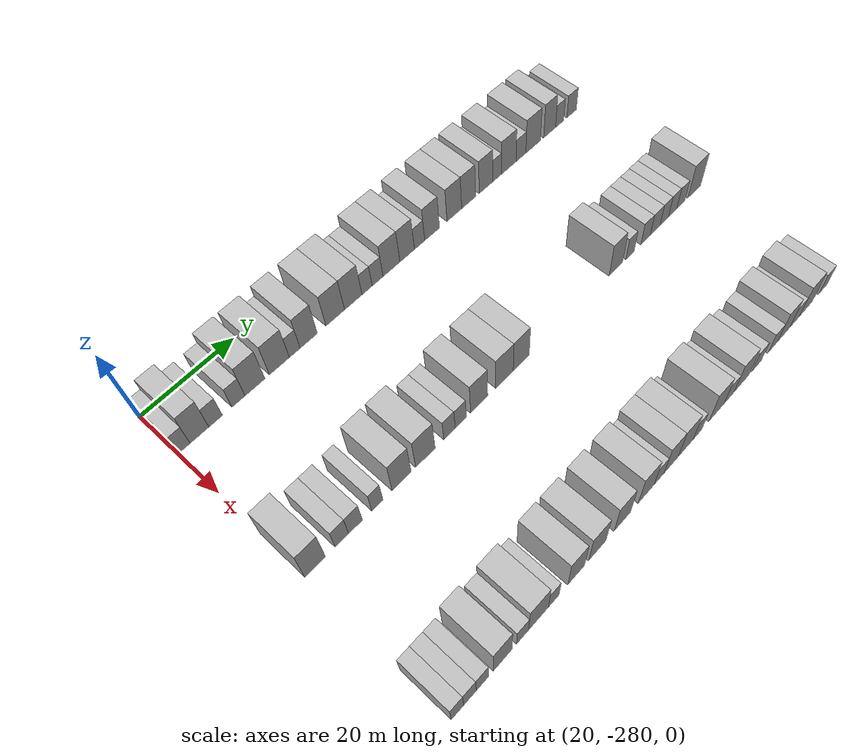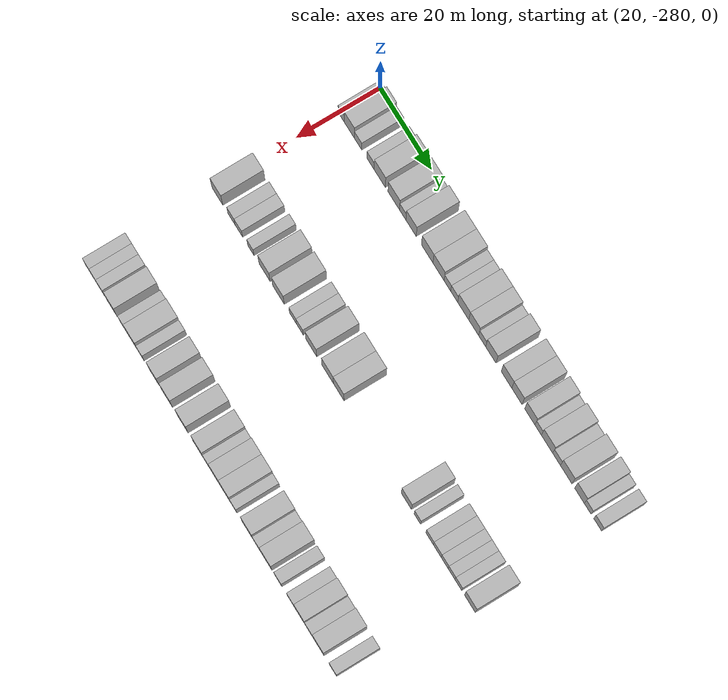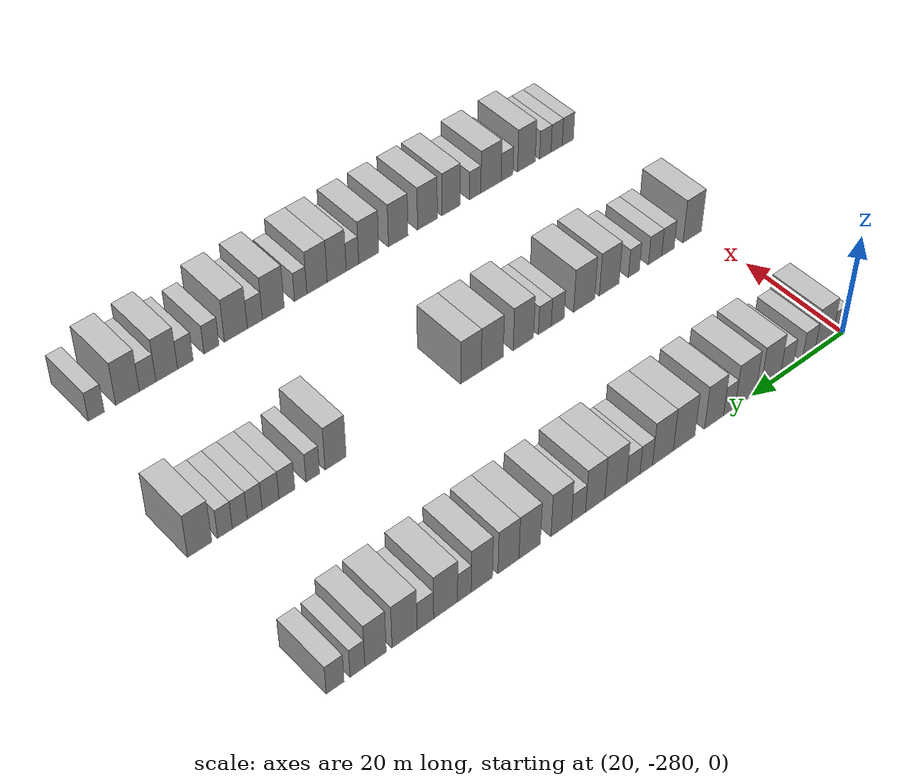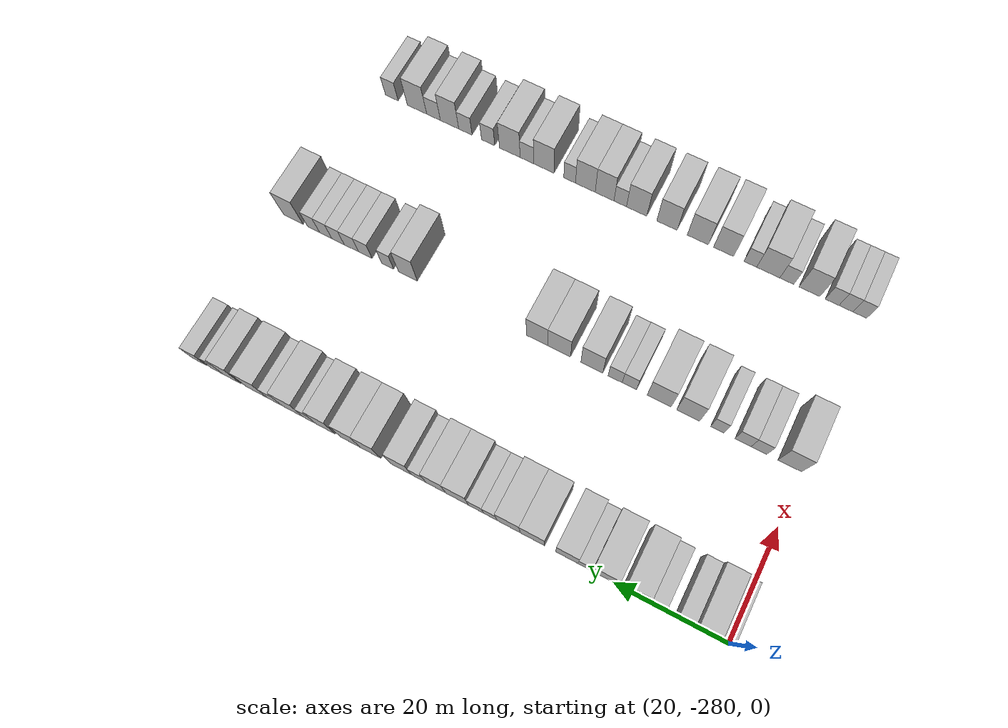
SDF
<sdf version="1.6">
 <world name="default">
  <model name="building_1">
   <static>1</static>
   <pose>25.0000 -278.7704 0 0.000000 0.000000 0.000000</pose>
   <link name="link">
    <pose>0 0 3.00 0 0 0</pose>
    <collision name="collision"><geometry><box><size>10.0000 2.4591 6.0000</size></box></geometry></collision>
    <visual name="visual">
     <cast_shadows>0</cast_shadows>
     <geometry><box><size>10.0000 2.4591 6.0000</size></box></geometry>
     <material>
      <script>
       <uri>model://HANNAS_wall/materials/scripts</uri>
       <uri>model://HANNAS_wall/materials/textures</uri>
       <name>vrc/HANNAS_wall</name>
      </script>
     </material>
    </visual>
   </link>
  </model>
  <model name="building_2">
   <static>1</static>
   <pose>25.0000 -275.6036 0 0.000000 0.000000 0.000000</pose>
   <link name="link">
    <pose>0 0 4.50 0 0 0</pose>
    <collision name="collision"><geometry><box><size>10.0000 3.8746 9.0000</size></box></geometry></collision>
    <visual name="visual">
     <cast_shadows>0</cast_shadows>
     <geometry><box><size>10.0000 3.8746 9.0000</size></box></geometry>
     <material>
      <script>
       <uri>model://HANNAS_wall/materials/scripts</uri>
       <uri>model://HANNAS_wall/materials/textures</uri>
       <name>vrc/HANNAS_wall</name>
      </script>
     </material>
    </visual>
   </link>
  </model>
  <model name="building_3">
   <static>1</static>
   <pose>25.0000 -272.2474 0 0.000000 0.000000 0.000000</pose>
   <link name="link">
    <pose>0 0 3.00 0 0 0</pose>
    <collision name="collision"><geometry><box><size>10.0000 2.8378 6.0000</size></box></geometry></collision>
    <visual name="visual">
     <cast_shadows>0</cast_shadows>
     <geometry><box><size>10.0000 2.8378 6.0000</size></box></geometry>
     <material>
      <script>
       <uri>model://HANNAS_wall/materials/scripts</uri>
       <uri>model://HANNAS_wall/materials/textures</uri>
       <name>vrc/HANNAS_wall</name>
      </script>
     </material>
    </visual>
   </link>
  </model>
  <model name="building_4">
   <static>1</static>
   <pose>25.0000 -267.4222 0 0.000000 0.000000 0.000000</pose>
   <link name="link">
    <pose>0 0 3.00 0 0 0</pose>
    <collision name="collision"><geometry><box><size>10.0000 2.8126 6.0000</size></box></geometry></collision>
    <visual name="visual">
     <cast_shadows>0</cast_shadows>
     <geometry><box><size>10.0000 2.8126 6.0000</size></box></geometry>
     <material>
      <script>
       <uri>model://HANNAS_wall/materials/scripts</uri>
       <uri>model://HANNAS_wall/materials/textures</uri>
       <name>vrc/HANNAS_wall</name>
      </script>
     </material>
    </visual>
   </link>
  </model>
  <model name="building_5">
   <static>1</static>
   <pose>25.0000 -263.8523 0 0.000000 0.000000 0.000000</pose>
   <link name="link">
    <pose>0 0 4.50 0 0 0</pose>
    <collision name="collision"><geometry><box><size>10.0000 4.3272 9.0000</size></box></geometry></collision>
    <visual name="visual">
     <cast_shadows>0</cast_shadows>
     <geometry><box><size>10.0000 4.3272 9.0000</size></box></geometry>
     <material>
      <script>
       <uri>model://HANNAS_wall/materials/scripts</uri>
       <uri>model://HANNAS_wall/materials/textures</uri>
       <name>vrc/HANNAS_wall</name>
      </script>
     </material>
    </visual>
   </link>
  </model>
  <model name="building_6">
   <static>1</static>
   <pose>25.0000 -258.4551 0 0.000000 0.000000 0.000000</pose>
   <link name="link">
    <pose>0 0 4.50 0 0 0</pose>
    <collision name="collision"><geometry><box><size>10.0000 4.4672 9.0000</size></box></geometry></collision>
    <visual name="visual">
     <cast_shadows>0</cast_shadows>
     <geometry><box><size>10.0000 4.4672 9.0000</size></box></geometry>
     <material>
      <script>
       <uri>model://HANNAS_wall/materials/scripts</uri>
       <uri>model://HANNAS_wall/materials/textures</uri>
       <name>vrc/HANNAS_wall</name>
      </script>
     </material>
    </visual>
   </link>
  </model>
  <model name="building_7">
   <static>1</static>
   <pose>25.0000 -254.9983 0 0.000000 0.000000 0.000000</pose>
   <link name="link">
    <pose>0 0 3.00 0 0 0</pose>
    <collision name="collision"><geometry><box><size>10.0000 2.4464 6.0000</size></box></geometry></collision>
    <visual name="visual">
     <cast_shadows>0</cast_shadows>
     <geometry><box><size>10.0000 2.4464 6.0000</size></box></geometry>
     <material>
      <script>
       <uri>model://HANNAS_wall/materials/scripts</uri>
       <uri>model://HANNAS_wall/materials/textures</uri>
       <name>vrc/HANNAS_wall</name>
      </script>
     </material>
    </visual>
   </link>
  </model>
  <model name="building_8">
   <static>1</static>
   <pose>25.0000 -251.7890 0 0.000000 0.000000 0.000000</pose>
   <link name="link">
    <pose>0 0 4.50 0 0 0</pose>
    <collision name="collision"><geometry><box><size>10.0000 3.9722 9.0000</size></box></geometry></collision>
    <visual name="visual">
     <cast_shadows>0</cast_shadows>
     <geometry><box><size>10.0000 3.9722 9.0000</size></box></geometry>
     <material>
      <script>
       <uri>model://HANNAS_wall/materials/scripts</uri>
       <uri>model://HANNAS_wall/materials/textures</uri>
       <name>vrc/HANNAS_wall</name>
      </script>
     </material>
    </visual>
   </link>
  </model>
  <model name="building_9">
   <static>1</static>
   <pose>25.0000 -245.5877 0 0.000000 0.000000 0.000000</pose>
   <link name="link">
    <pose>0 0 4.50 0 0 0</pose>
    <collision name="collision"><geometry><box><size>10.0000 4.4304 9.0000</size></box></geometry></collision>
    <visual name="visual">
     <cast_shadows>0</cast_shadows>
     <geometry><box><size>10.0000 4.4304 9.0000</size></box></geometry>
     <material>
      <script>
       <uri>model://HANNAS_wall/materials/scripts</uri>
       <uri>model://HANNAS_wall/materials/textures</uri>
       <name>vrc/HANNAS_wall</name>
      </script>
     </material>
    </visual>
   </link>
  </model>
  <model name="building_10">
   <static>1</static>
   <pose>25.0000 -241.2524 0 0.000000 0.000000 0.000000</pose>
   <link name="link">
    <pose>0 0 4.50 0 0 0</pose>
    <collision name="collision"><geometry><box><size>10.0000 4.2402 9.0000</size></box></geometry></collision>
    <visual name="visual">
     <cast_shadows>0</cast_shadows>
     <geometry><box><size>10.0000 4.2402 9.0000</size></box></geometry>
     <material>
      <script>
       <uri>model://HANNAS_wall/materials/scripts</uri>
       <uri>model://HANNAS_wall/materials/textures</uri>
       <name>vrc/HANNAS_wall</name>
      </script>
     </material>
    </visual>
   </link>
  </model>
  <model name="building_11">
   <static>1</static>
   <pose>25.0000 -237.8776 0 0.000000 0.000000 0.000000</pose>
   <link name="link">
    <pose>0 0 3.00 0 0 0</pose>
    <collision name="collision"><geometry><box><size>10.0000 2.5093 6.0000</size></box></geometry></collision>
    <visual name="visual">
     <cast_shadows>0</cast_shadows>
     <geometry><box><size>10.0000 2.5093 6.0000</size></box></geometry>
     <material>
      <script>
       <uri>model://HANNAS_wall/materials/scripts</uri>
       <uri>model://HANNAS_wall/materials/textures</uri>
       <name>vrc/HANNAS_wall</name>
      </script>
     </material>
    </visual>
   </link>
  </model>
  <model name="building_12">
   <static>1</static>
   <pose>25.0000 -235.2699 0 0.000000 0.000000 0.000000</pose>
   <link name="link">
    <pose>0 0 3.00 0 0 0</pose>
    <collision name="collision"><geometry><box><size>10.0000 2.7062 6.0000</size></box></geometry></collision>
    <visual name="visual">
     <cast_shadows>0</cast_shadows>
     <geometry><box><size>10.0000 2.7062 6.0000</size></box></geometry>
     <material>
      <script>
       <uri>model://HANNAS_wall/materials/scripts</uri>
       <uri>model://HANNAS_wall/materials/textures</uri>
       <name>vrc/HANNAS_wall</name>
      </script>
     </material>
    </visual>
   </link>
  </model>
  <model name="building_13">
   <static>1</static>
   <pose>25.0000 -231.7873 0 0.000000 0.000000 0.000000</pose>
   <link name="link">
    <pose>0 0 4.50 0 0 0</pose>
    <collision name="collision"><geometry><box><size>10.0000 4.2591 9.0000</size></box></geometry></collision>
    <visual name="visual">
     <cast_shadows>0</cast_shadows>
     <geometry><box><size>10.0000 4.2591 9.0000</size></box></geometry>
     <material>
      <script>
       <uri>model://HANNAS_wall/materials/scripts</uri>
       <uri>model://HANNAS_wall/materials/textures</uri>
       <name>vrc/HANNAS_wall</name>
      </script>
     </material>
    </visual>
   </link>
  </model>
  <model name="building_14">
   <static>1</static>
   <pose>25.0000 -227.7850 0 0.000000 0.000000 0.000000</pose>
   <link name="link">
    <pose>0 0 4.50 0 0 0</pose>
    <collision name="collision"><geometry><box><size>10.0000 3.7455 9.0000</size></box></geometry></collision>
    <visual name="visual">
     <cast_shadows>0</cast_shadows>
     <geometry><box><size>10.0000 3.7455 9.0000</size></box></geometry>
     <material>
      <script>
       <uri>model://HANNAS_wall/materials/scripts</uri>
       <uri>model://HANNAS_wall/materials/textures</uri>
       <name>vrc/HANNAS_wall</name>
      </script>
     </material>
    </visual>
   </link>
  </model>
  <model name="building_15">
   <static>1</static>
   <pose>25.0000 -224.5746 0 0.000000 0.000000 0.000000</pose>
   <link name="link">
    <pose>0 0 3.00 0 0 0</pose>
    <collision name="collision"><geometry><box><size>10.0000 2.6752 6.0000</size></box></geometry></collision>
    <visual name="visual">
     <cast_shadows>0</cast_shadows>
     <geometry><box><size>10.0000 2.6752 6.0000</size></box></geometry>
     <material>
      <script>
       <uri>model://HANNAS_wall/materials/scripts</uri>
       <uri>model://HANNAS_wall/materials/textures</uri>
       <name>vrc/HANNAS_wall</name>
      </script>
     </material>
    </visual>
   </link>
  </model>
  <model name="building_16">
   <static>1</static>
   <pose>25.0000 -221.2788 0 0.000000 0.000000 0.000000</pose>
   <link name="link">
    <pose>0 0 4.50 0 0 0</pose>
    <collision name="collision"><geometry><box><size>10.0000 3.9164 9.0000</size></box></geometry></collision>
    <visual name="visual">
     <cast_shadows>0</cast_shadows>
     <geometry><box><size>10.0000 3.9164 9.0000</size></box></geometry>
     <material>
      <script>
       <uri>model://HANNAS_wall/materials/scripts</uri>
       <uri>model://HANNAS_wall/materials/textures</uri>
       <name>vrc/HANNAS_wall</name>
      </script>
     </material>
    </visual>
   </link>
  </model>
  <model name="building_17">
   <static>1</static>
   <pose>25.0000 -215.3214 0 0.000000 0.000000 0.000000</pose>
   <link name="link">
    <pose>0 0 4.50 0 0 0</pose>
    <collision name="collision"><geometry><box><size>10.0000 3.9984 9.0000</size></box></geometry></collision>
    <visual name="visual">
     <cast_shadows>0</cast_shadows>
     <geometry><box><size>10.0000 3.9984 9.0000</size></box></geometry>
     <material>
      <script>
       <uri>model://HANNAS_wall/materials/scripts</uri>
       <uri>model://HANNAS_wall/materials/textures</uri>
       <name>vrc/HANNAS_wall</name>
      </script>
     </material>
    </visual>
   </link>
  </model>
  <model name="building_18">
   <static>1</static>
   <pose>25.0000 -211.3917 0 0.000000 0.000000 0.000000</pose>
   <link name="link">
    <pose>0 0 4.50 0 0 0</pose>
    <collision name="collision"><geometry><box><size>10.0000 3.8610 9.0000</size></box></geometry></collision>
    <visual name="visual">
     <cast_shadows>0</cast_shadows>
     <geometry><box><size>10.0000 3.8610 9.0000</size></box></geometry>
     <material>
      <script>
       <uri>model://HANNAS_wall/materials/scripts</uri>
       <uri>model://HANNAS_wall/materials/textures</uri>
       <name>vrc/HANNAS_wall</name>
      </script>
     </material>
    </visual>
   </link>
  </model>
  <model name="building_19">
   <static>1</static>
   <pose>25.0000 -206.5305 0 0.000000 0.000000 0.000000</pose>
   <link name="link">
    <pose>0 0 4.50 0 0 0</pose>
    <collision name="collision"><geometry><box><size>10.0000 3.8614 9.0000</size></box></geometry></collision>
    <visual name="visual">
     <cast_shadows>0</cast_shadows>
     <geometry><box><size>10.0000 3.8614 9.0000</size></box></geometry>
     <material>
      <script>
       <uri>model://HANNAS_wall/materials/scripts</uri>
       <uri>model://HANNAS_wall/materials/textures</uri>
       <name>vrc/HANNAS_wall</name>
      </script>
     </material>
    </visual>
   </link>
  </model>
  <model name="building_20">
   <static>1</static>
   <pose>25.0000 -203.3896 0 0.000000 0.000000 0.000000</pose>
   <link name="link">
    <pose>0 0 3.00 0 0 0</pose>
    <collision name="collision"><geometry><box><size>10.0000 2.4204 6.0000</size></box></geometry></collision>
    <visual name="visual">
     <cast_shadows>0</cast_shadows>
     <geometry><box><size>10.0000 2.4204 6.0000</size></box></geometry>
     <material>
      <script>
       <uri>model://HANNAS_wall/materials/scripts</uri>
       <uri>model://HANNAS_wall/materials/textures</uri>
       <name>vrc/HANNAS_wall</name>
      </script>
     </material>
    </visual>
   </link>
  </model>
  <model name="building_21">
   <static>1</static>
   <pose>25.0000 -200.0525 0 0.000000 0.000000 0.000000</pose>
   <link name="link">
    <pose>0 0 4.50 0 0 0</pose>
    <collision name="collision"><geometry><box><size>10.0000 4.2536 9.0000</size></box></geometry></collision>
    <visual name="visual">
     <cast_shadows>0</cast_shadows>
     <geometry><box><size>10.0000 4.2536 9.0000</size></box></geometry>
     <material>
      <script>
       <uri>model://HANNAS_wall/materials/scripts</uri>
       <uri>model://HANNAS_wall/materials/textures</uri>
       <name>vrc/HANNAS_wall</name>
      </script>
     </material>
    </visual>
   </link>
  </model>
  <model name="building_22">
   <static>1</static>
   <pose>25.0000 -196.4762 0 0.000000 0.000000 0.000000</pose>
   <link name="link">
    <pose>0 0 3.00 0 0 0</pose>
    <collision name="collision"><geometry><box><size>10.0000 2.8991 6.0000</size></box></geometry></collision>
    <visual name="visual">
     <cast_shadows>0</cast_shadows>
     <geometry><box><size>10.0000 2.8991 6.0000</size></box></geometry>
     <material>
      <script>
       <uri>model://HANNAS_wall/materials/scripts</uri>
       <uri>model://HANNAS_wall/materials/textures</uri>
       <name>vrc/HANNAS_wall</name>
      </script>
     </material>
    </visual>
   </link>
  </model>
  <model name="building_23">
   <static>1</static>
   <pose>25.0000 -192.8627 0 0.000000 0.000000 0.000000</pose>
   <link name="link">
    <pose>0 0 4.50 0 0 0</pose>
    <collision name="collision"><geometry><box><size>10.0000 4.3278 9.0000</size></box></geometry></collision>
    <visual name="visual">
     <cast_shadows>0</cast_shadows>
     <geometry><box><size>10.0000 4.3278 9.0000</size></box></geometry>
     <material>
      <script>
       <uri>model://HANNAS_wall/materials/scripts</uri>
       <uri>model://HANNAS_wall/materials/textures</uri>
       <name>vrc/HANNAS_wall</name>
      </script>
     </material>
    </visual>
   </link>
  </model>
  <model name="building_24">
   <static>1</static>
   <pose>25.0000 -187.8923 0 0.000000 0.000000 0.000000</pose>
   <link name="link">
    <pose>0 0 4.50 0 0 0</pose>
    <collision name="collision"><geometry><box><size>10.0000 3.6131 9.0000</size></box></geometry></collision>
    <visual name="visual">
     <cast_shadows>0</cast_shadows>
     <geometry><box><size>10.0000 3.6131 9.0000</size></box></geometry>
     <material>
      <script>
       <uri>model://HANNAS_wall/materials/scripts</uri>
       <uri>model://HANNAS_wall/materials/textures</uri>
       <name>vrc/HANNAS_wall</name>
      </script>
     </material>
    </visual>
   </link>
  </model>
  <model name="building_25">
   <static>1</static>
   <pose>25.0000 -184.8343 0 0.000000 0.000000 0.000000</pose>
   <link name="link">
    <pose>0 0 3.00 0 0 0</pose>
    <collision name="collision"><geometry><box><size>10.0000 2.5029 6.0000</size></box></geometry></collision>
    <visual name="visual">
     <cast_shadows>0</cast_shadows>
     <geometry><box><size>10.0000 2.5029 6.0000</size></box></geometry>
     <material>
      <script>
       <uri>model://HANNAS_wall/materials/scripts</uri>
       <uri>model://HANNAS_wall/materials/textures</uri>
       <name>vrc/HANNAS_wall</name>
      </script>
     </material>
    </visual>
   </link>
  </model>
  <model name="building_26">
   <static>1</static>
   <pose>25.0000 -181.0926 0 0.000000 0.000000 0.000000</pose>
   <link name="link">
    <pose>0 0 3.00 0 0 0</pose>
    <collision name="collision"><geometry><box><size>10.0000 2.9805 6.0000</size></box></geometry></collision>
    <visual name="visual">
     <cast_shadows>0</cast_shadows>
     <geometry><box><size>10.0000 2.9805 6.0000</size></box></geometry>
     <material>
      <script>
       <uri>model://HANNAS_wall/materials/scripts</uri>
       <uri>model://HANNAS_wall/materials/textures</uri>
       <name>vrc/HANNAS_wall</name>
      </script>
     </material>
    </visual>
   </link>
  </model>
  <model name="building_148">
   <static>1</static>
   <pose>55.0000 -277.8992 0 0.000000 0.000000 0.000000</pose>
   <link name="link">
    <pose>0 0 4.50 0 0 0</pose>
    <collision name="collision"><geometry><box><size>10.0000 4.2016 9.0000</size></box></geometry></collision>
    <visual name="visual">
     <cast_shadows>0</cast_shadows>
     <geometry><box><size>10.0000 4.2016 9.0000</size></box></geometry>
     <material>
      <script>
       <uri>model://HANNAS_wall/materials/scripts</uri>
       <uri>model://HANNAS_wall/materials/textures</uri>
       <name>vrc/HANNAS_wall</name>
      </script>
     </material>
    </visual>
   </link>
  </model>
  <model name="building_149">
   <static>1</static>
   <pose>55.0000 -272.3833 0 0.000000 0.000000 0.000000</pose>
   <link name="link">
    <pose>0 0 3.00 0 0 0</pose>
    <collision name="collision"><geometry><box><size>10.0000 2.8302 6.0000</size></box></geometry></collision>
    <visual name="visual">
     <cast_shadows>0</cast_shadows>
     <geometry><box><size>10.0000 2.8302 6.0000</size></box></geometry>
     <material>
      <script>
       <uri>model://HANNAS_wall/materials/scripts</uri>
       <uri>model://HANNAS_wall/materials/textures</uri>
       <name>vrc/HANNAS_wall</name>
      </script>
     </material>
    </visual>
   </link>
  </model>
  <model name="building_150">
   <static>1</static>
   <pose>55.0000 -269.5084 0 0.000000 0.000000 0.000000</pose>
   <link name="link">
    <pose>0 0 3.00 0 0 0</pose>
    <collision name="collision"><geometry><box><size>10.0000 2.9195 6.0000</size></box></geometry></collision>
    <visual name="visual">
     <cast_shadows>0</cast_shadows>
     <geometry><box><size>10.0000 2.9195 6.0000</size></box></geometry>
     <material>
      <script>
       <uri>model://HANNAS_wall/materials/scripts</uri>
       <uri>model://HANNAS_wall/materials/textures</uri>
       <name>vrc/HANNAS_wall</name>
      </script>
     </material>
    </visual>
   </link>
  </model>
  <model name="building_151">
   <static>1</static>
   <pose>55.0000 -264.8258 0 0.000000 0.000000 0.000000</pose>
   <link name="link">
    <pose>0 0 3.00 0 0 0</pose>
    <collision name="collision"><geometry><box><size>10.0000 2.4458 6.0000</size></box></geometry></collision>
    <visual name="visual">
     <cast_shadows>0</cast_shadows>
     <geometry><box><size>10.0000 2.4458 6.0000</size></box></geometry>
     <material>
      <script>
       <uri>model://HANNAS_wall/materials/scripts</uri>
       <uri>model://HANNAS_wall/materials/textures</uri>
       <name>vrc/HANNAS_wall</name>
      </script>
     </material>
    </visual>
   </link>
  </model>
  <model name="building_152">
   <static>1</static>
   <pose>55.0000 -259.4687 0 0.000000 0.000000 0.000000</pose>
   <link name="link">
    <pose>0 0 4.50 0 0 0</pose>
    <collision name="collision"><geometry><box><size>10.0000 4.2684 9.0000</size></box></geometry></collision>
    <visual name="visual">
     <cast_shadows>0</cast_shadows>
     <geometry><box><size>10.0000 4.2684 9.0000</size></box></geometry>
     <material>
      <script>
       <uri>model://HANNAS_wall/materials/scripts</uri>
       <uri>model://HANNAS_wall/materials/textures</uri>
       <name>vrc/HANNAS_wall</name>
      </script>
     </material>
    </visual>
   </link>
  </model>
  <model name="building_153">
   <static>1</static>
   <pose>55.0000 -254.0909 0 0.000000 0.000000 0.000000</pose>
   <link name="link">
    <pose>0 0 4.50 0 0 0</pose>
    <collision name="collision"><geometry><box><size>10.0000 4.4873 9.0000</size></box></geometry></collision>
    <visual name="visual">
     <cast_shadows>0</cast_shadows>
     <geometry><box><size>10.0000 4.4873 9.0000</size></box></geometry>
     <material>
      <script>
       <uri>model://HANNAS_wall/materials/scripts</uri>
       <uri>model://HANNAS_wall/materials/textures</uri>
       <name>vrc/HANNAS_wall</name>
      </script>
     </material>
    </visual>
   </link>
  </model>
  <model name="building_154">
   <static>1</static>
   <pose>55.0000 -248.5005 0 0.000000 0.000000 0.000000</pose>
   <link name="link">
    <pose>0 0 3.00 0 0 0</pose>
    <collision name="collision"><geometry><box><size>10.0000 2.6934 6.0000</size></box></geometry></collision>
    <visual name="visual">
     <cast_shadows>0</cast_shadows>
     <geometry><box><size>10.0000 2.6934 6.0000</size></box></geometry>
     <material>
      <script>
       <uri>model://HANNAS_wall/materials/scripts</uri>
       <uri>model://HANNAS_wall/materials/textures</uri>
       <name>vrc/HANNAS_wall</name>
      </script>
     </material>
    </visual>
   </link>
  </model>
  <model name="building_155">
   <static>1</static>
   <pose>55.0000 -245.8112 0 0.000000 0.000000 0.000000</pose>
   <link name="link">
    <pose>0 0 3.00 0 0 0</pose>
    <collision name="collision"><geometry><box><size>10.0000 2.6852 6.0000</size></box></geometry></collision>
    <visual name="visual">
     <cast_shadows>0</cast_shadows>
     <geometry><box><size>10.0000 2.6852 6.0000</size></box></geometry>
     <material>
      <script>
       <uri>model://HANNAS_wall/materials/scripts</uri>
       <uri>model://HANNAS_wall/materials/textures</uri>
       <name>vrc/HANNAS_wall</name>
      </script>
     </material>
    </visual>
   </link>
  </model>
  <model name="building_156">
   <static>1</static>
   <pose>55.0000 -241.3764 0 0.000000 0.000000 0.000000</pose>
   <link name="link">
    <pose>0 0 4.50 0 0 0</pose>
    <collision name="collision"><geometry><box><size>10.0000 4.1845 9.0000</size></box></geometry></collision>
    <visual name="visual">
     <cast_shadows>0</cast_shadows>
     <geometry><box><size>10.0000 4.1845 9.0000</size></box></geometry>
     <material>
      <script>
       <uri>model://HANNAS_wall/materials/scripts</uri>
       <uri>model://HANNAS_wall/materials/textures</uri>
       <name>vrc/HANNAS_wall</name>
      </script>
     </material>
    </visual>
   </link>
  </model>
  <model name="building_157">
   <static>1</static>
   <pose>55.0000 -235.0809 0 0.000000 0.000000 0.000000</pose>
   <link name="link">
    <pose>0 0 4.50 0 0 0</pose>
    <collision name="collision"><geometry><box><size>10.0000 4.4064 9.0000</size></box></geometry></collision>
    <visual name="visual">
     <cast_shadows>0</cast_shadows>
     <geometry><box><size>10.0000 4.4064 9.0000</size></box></geometry>
     <material>
      <script>
       <uri>model://HANNAS_wall/materials/scripts</uri>
       <uri>model://HANNAS_wall/materials/textures</uri>
       <name>vrc/HANNAS_wall</name>
      </script>
     </material>
    </visual>
   </link>
  </model>
  <model name="building_158">
   <static>1</static>
   <pose>55.0000 -230.8339 0 0.000000 0.000000 0.000000</pose>
   <link name="link">
    <pose>0 0 4.50 0 0 0</pose>
    <collision name="collision"><geometry><box><size>10.0000 4.0876 9.0000</size></box></geometry></collision>
    <visual name="visual">
     <cast_shadows>0</cast_shadows>
     <geometry><box><size>10.0000 4.0876 9.0000</size></box></geometry>
     <material>
      <script>
       <uri>model://HANNAS_wall/materials/scripts</uri>
       <uri>model://HANNAS_wall/materials/textures</uri>
       <name>vrc/HANNAS_wall</name>
      </script>
     </material>
    </visual>
   </link>
  </model>
  <model name="building_159">
   <static>1</static>
   <pose>55.0000 -205.0114 0 0.000000 0.000000 0.000000</pose>
   <link name="link">
    <pose>0 0 4.50 0 0 0</pose>
    <collision name="collision"><geometry><box><size>10.0000 3.8525 9.0000</size></box></geometry></collision>
    <visual name="visual">
     <cast_shadows>0</cast_shadows>
     <geometry><box><size>10.0000 3.8525 9.0000</size></box></geometry>
     <material>
      <script>
       <uri>model://HANNAS_wall/materials/scripts</uri>
       <uri>model://HANNAS_wall/materials/textures</uri>
       <name>vrc/HANNAS_wall</name>
      </script>
     </material>
    </visual>
   </link>
  </model>
  <model name="building_160">
   <static>1</static>
   <pose>55.0000 -200.8597 0 0.000000 0.000000 0.000000</pose>
   <link name="link">
    <pose>0 0 3.00 0 0 0</pose>
    <collision name="collision"><geometry><box><size>10.0000 2.4510 6.0000</size></box></geometry></collision>
    <visual name="visual">
     <cast_shadows>0</cast_shadows>
     <geometry><box><size>10.0000 2.4510 6.0000</size></box></geometry>
     <material>
      <script>
       <uri>model://HANNAS_wall/materials/scripts</uri>
       <uri>model://HANNAS_wall/materials/textures</uri>
       <name>vrc/HANNAS_wall</name>
      </script>
     </material>
    </visual>
   </link>
  </model>
  <model name="building_161">
   <static>1</static>
   <pose>55.0000 -196.2247 0 0.000000 0.000000 0.000000</pose>
   <link name="link">
    <pose>0 0 3.00 0 0 0</pose>
    <collision name="collision"><geometry><box><size>10.0000 2.8190 6.0000</size></box></geometry></collision>
    <visual name="visual">
     <cast_shadows>0</cast_shadows>
     <geometry><box><size>10.0000 2.8190 6.0000</size></box></geometry>
     <material>
      <script>
       <uri>model://HANNAS_wall/materials/scripts</uri>
       <uri>model://HANNAS_wall/materials/textures</uri>
       <name>vrc/HANNAS_wall</name>
      </script>
     </material>
    </visual>
   </link>
  </model>
  <model name="building_162">
   <static>1</static>
   <pose>55.0000 -193.3310 0 0.000000 0.000000 0.000000</pose>
   <link name="link">
    <pose>0 0 3.00 0 0 0</pose>
    <collision name="collision"><geometry><box><size>10.0000 2.9685 6.0000</size></box></geometry></collision>
    <visual name="visual">
     <cast_shadows>0</cast_shadows>
     <geometry><box><size>10.0000 2.9685 6.0000</size></box></geometry>
     <material>
      <script>
       <uri>model://HANNAS_wall/materials/scripts</uri>
       <uri>model://HANNAS_wall/materials/textures</uri>
       <name>vrc/HANNAS_wall</name>
      </script>
     </material>
    </visual>
   </link>
  </model>
  <model name="building_163">
   <static>1</static>
   <pose>55.0000 -190.5410 0 0.000000 0.000000 0.000000</pose>
   <link name="link">
    <pose>0 0 3.00 0 0 0</pose>
    <collision name="collision"><geometry><box><size>10.0000 2.6116 6.0000</size></box></geometry></collision>
    <visual name="visual">
     <cast_shadows>0</cast_shadows>
     <geometry><box><size>10.0000 2.6116 6.0000</size></box></geometry>
     <material>
      <script>
       <uri>model://HANNAS_wall/materials/scripts</uri>
       <uri>model://HANNAS_wall/materials/textures</uri>
       <name>vrc/HANNAS_wall</name>
      </script>
     </material>
    </visual>
   </link>
  </model>
  <model name="building_164">
   <static>1</static>
   <pose>55.0000 -187.9465 0 0.000000 0.000000 0.000000</pose>
   <link name="link">
    <pose>0 0 3.00 0 0 0</pose>
    <collision name="collision"><geometry><box><size>10.0000 2.5773 6.0000</size></box></geometry></collision>
    <visual name="visual">
     <cast_shadows>0</cast_shadows>
     <geometry><box><size>10.0000 2.5773 6.0000</size></box></geometry>
     <material>
      <script>
       <uri>model://HANNAS_wall/materials/scripts</uri>
       <uri>model://HANNAS_wall/materials/textures</uri>
       <name>vrc/HANNAS_wall</name>
      </script>
     </material>
    </visual>
   </link>
  </model>
  <model name="building_165">
   <static>1</static>
   <pose>55.0000 -185.3942 0 0.000000 0.000000 0.000000</pose>
   <link name="link">
    <pose>0 0 3.00 0 0 0</pose>
    <collision name="collision"><geometry><box><size>10.0000 2.5274 6.0000</size></box></geometry></collision>
    <visual name="visual">
     <cast_shadows>0</cast_shadows>
     <geometry><box><size>10.0000 2.5274 6.0000</size></box></geometry>
     <material>
      <script>
       <uri>model://HANNAS_wall/materials/scripts</uri>
       <uri>model://HANNAS_wall/materials/textures</uri>
       <name>vrc/HANNAS_wall</name>
      </script>
     </material>
    </visual>
   </link>
  </model>
  <model name="building_166">
   <static>1</static>
   <pose>55.0000 -181.0705 0 0.000000 0.000000 0.000000</pose>
   <link name="link">
    <pose>0 0 4.50 0 0 0</pose>
    <collision name="collision"><geometry><box><size>10.0000 4.1200 9.0000</size></box></geometry></collision>
    <visual name="visual">
     <cast_shadows>0</cast_shadows>
     <geometry><box><size>10.0000 4.1200 9.0000</size></box></geometry>
     <material>
      <script>
       <uri>model://HANNAS_wall/materials/scripts</uri>
       <uri>model://HANNAS_wall/materials/textures</uri>
       <name>vrc/HANNAS_wall</name>
      </script>
     </material>
    </visual>
   </link>
  </model>
  <model name="building_276">
   <static>1</static>
   <pose>85.0000 -278.7260 0 0.000000 0.000000 0.000000</pose>
   <link name="link">
    <pose>0 0 3.00 0 0 0</pose>
    <collision name="collision"><geometry><box><size>10.0000 2.5479 6.0000</size></box></geometry></collision>
    <visual name="visual">
     <cast_shadows>0</cast_shadows>
     <geometry><box><size>10.0000 2.5479 6.0000</size></box></geometry>
     <material>
      <script>
       <uri>model://HANNAS_wall/materials/scripts</uri>
       <uri>model://HANNAS_wall/materials/textures</uri>
       <name>vrc/HANNAS_wall</name>
      </script>
     </material>
    </visual>
   </link>
  </model>
  <model name="building_277">
   <static>1</static>
   <pose>85.0000 -276.1527 0 0.000000 0.000000 0.000000</pose>
   <link name="link">
    <pose>0 0 3.00 0 0 0</pose>
    <collision name="collision"><geometry><box><size>10.0000 2.5988 6.0000</size></box></geometry></collision>
    <visual name="visual">
     <cast_shadows>0</cast_shadows>
     <geometry><box><size>10.0000 2.5988 6.0000</size></box></geometry>
     <material>
      <script>
       <uri>model://HANNAS_wall/materials/scripts</uri>
       <uri>model://HANNAS_wall/materials/textures</uri>
       <name>vrc/HANNAS_wall</name>
      </script>
     </material>
    </visual>
   </link>
  </model>
  <model name="building_278">
   <static>1</static>
   <pose>85.0000 -273.5615 0 0.000000 0.000000 0.000000</pose>
   <link name="link">
    <pose>0 0 3.00 0 0 0</pose>
    <collision name="collision"><geometry><box><size>10.0000 2.5835 6.0000</size></box></geometry></collision>
    <visual name="visual">
     <cast_shadows>0</cast_shadows>
     <geometry><box><size>10.0000 2.5835 6.0000</size></box></geometry>
     <material>
      <script>
       <uri>model://HANNAS_wall/materials/scripts</uri>
       <uri>model://HANNAS_wall/materials/textures</uri>
       <name>vrc/HANNAS_wall</name>
      </script>
     </material>
    </visual>
   </link>
  </model>
  <model name="building_279">
   <static>1</static>
   <pose>85.0000 -269.2833 0 0.000000 0.000000 0.000000</pose>
   <link name="link">
    <pose>0 0 4.50 0 0 0</pose>
    <collision name="collision"><geometry><box><size>10.0000 3.9730 9.0000</size></box></geometry></collision>
    <visual name="visual">
     <cast_shadows>0</cast_shadows>
     <geometry><box><size>10.0000 3.9730 9.0000</size></box></geometry>
     <material>
      <script>
       <uri>model://HANNAS_wall/materials/scripts</uri>
       <uri>model://HANNAS_wall/materials/textures</uri>
       <name>vrc/HANNAS_wall</name>
      </script>
     </material>
    </visual>
   </link>
  </model>
  <model name="building_280">
   <static>1</static>
   <pose>85.0000 -264.9713 0 0.000000 0.000000 0.000000</pose>
   <link name="link">
    <pose>0 0 3.00 0 0 0</pose>
    <collision name="collision"><geometry><box><size>10.0000 2.6510 6.0000</size></box></geometry></collision>
    <visual name="visual">
     <cast_shadows>0</cast_shadows>
     <geometry><box><size>10.0000 2.6510 6.0000</size></box></geometry>
     <material>
      <script>
       <uri>model://HANNAS_wall/materials/scripts</uri>
       <uri>model://HANNAS_wall/materials/textures</uri>
       <name>vrc/HANNAS_wall</name>
      </script>
     </material>
    </visual>
   </link>
  </model>
  <model name="building_281">
   <static>1</static>
   <pose>85.0000 -261.4211 0 0.000000 0.000000 0.000000</pose>
   <link name="link">
    <pose>0 0 4.50 0 0 0</pose>
    <collision name="collision"><geometry><box><size>10.0000 4.4492 9.0000</size></box></geometry></collision>
    <visual name="visual">
     <cast_shadows>0</cast_shadows>
     <geometry><box><size>10.0000 4.4492 9.0000</size></box></geometry>
     <material>
      <script>
       <uri>model://HANNAS_wall/materials/scripts</uri>
       <uri>model://HANNAS_wall/materials/textures</uri>
       <name>vrc/HANNAS_wall</name>
      </script>
     </material>
    </visual>
   </link>
  </model>
  <model name="building_282">
   <static>1</static>
   <pose>85.0000 -257.9685 0 0.000000 0.000000 0.000000</pose>
   <link name="link">
    <pose>0 0 3.00 0 0 0</pose>
    <collision name="collision"><geometry><box><size>10.0000 2.4560 6.0000</size></box></geometry></collision>
    <visual name="visual">
     <cast_shadows>0</cast_shadows>
     <geometry><box><size>10.0000 2.4560 6.0000</size></box></geometry>
     <material>
      <script>
       <uri>model://HANNAS_wall/materials/scripts</uri>
       <uri>model://HANNAS_wall/materials/textures</uri>
       <name>vrc/HANNAS_wall</name>
      </script>
     </material>
    </visual>
   </link>
  </model>
  <model name="building_283">
   <static>1</static>
   <pose>85.0000 -252.7789 0 0.000000 0.000000 0.000000</pose>
   <link name="link">
    <pose>0 0 4.50 0 0 0</pose>
    <collision name="collision"><geometry><box><size>10.0000 3.9233 9.0000</size></box></geometry></collision>
    <visual name="visual">
     <cast_shadows>0</cast_shadows>
     <geometry><box><size>10.0000 3.9233 9.0000</size></box></geometry>
     <material>
      <script>
       <uri>model://HANNAS_wall/materials/scripts</uri>
       <uri>model://HANNAS_wall/materials/textures</uri>
       <name>vrc/HANNAS_wall</name>
      </script>
     </material>
    </visual>
   </link>
  </model>
  <model name="building_284">
   <static>1</static>
   <pose>85.0000 -247.7358 0 0.000000 0.000000 0.000000</pose>
   <link name="link">
    <pose>0 0 4.50 0 0 0</pose>
    <collision name="collision"><geometry><box><size>10.0000 4.1629 9.0000</size></box></geometry></collision>
    <visual name="visual">
     <cast_shadows>0</cast_shadows>
     <geometry><box><size>10.0000 4.1629 9.0000</size></box></geometry>
     <material>
      <script>
       <uri>model://HANNAS_wall/materials/scripts</uri>
       <uri>model://HANNAS_wall/materials/textures</uri>
       <name>vrc/HANNAS_wall</name>
      </script>
     </material>
    </visual>
   </link>
  </model>
  <model name="building_285">
   <static>1</static>
   <pose>85.0000 -241.6246 0 0.000000 0.000000 0.000000</pose>
   <link name="link">
    <pose>0 0 4.50 0 0 0</pose>
    <collision name="collision"><geometry><box><size>10.0000 4.0594 9.0000</size></box></geometry></collision>
    <visual name="visual">
     <cast_shadows>0</cast_shadows>
     <geometry><box><size>10.0000 4.0594 9.0000</size></box></geometry>
     <material>
      <script>
       <uri>model://HANNAS_wall/materials/scripts</uri>
       <uri>model://HANNAS_wall/materials/textures</uri>
       <name>vrc/HANNAS_wall</name>
      </script>
     </material>
    </visual>
   </link>
  </model>
  <model name="building_286">
   <static>1</static>
   <pose>85.0000 -235.5514 0 0.000000 0.000000 0.000000</pose>
   <link name="link">
    <pose>0 0 4.50 0 0 0</pose>
    <collision name="collision"><geometry><box><size>10.0000 4.0871 9.0000</size></box></geometry></collision>
    <visual name="visual">
     <cast_shadows>0</cast_shadows>
     <geometry><box><size>10.0000 4.0871 9.0000</size></box></geometry>
     <material>
      <script>
       <uri>model://HANNAS_wall/materials/scripts</uri>
       <uri>model://HANNAS_wall/materials/textures</uri>
       <name>vrc/HANNAS_wall</name>
      </script>
     </material>
    </visual>
   </link>
  </model>
  <model name="building_287">
   <static>1</static>
   <pose>85.0000 -232.2393 0 0.000000 0.000000 0.000000</pose>
   <link name="link">
    <pose>0 0 3.00 0 0 0</pose>
    <collision name="collision"><geometry><box><size>10.0000 2.5370 6.0000</size></box></geometry></collision>
    <visual name="visual">
     <cast_shadows>0</cast_shadows>
     <geometry><box><size>10.0000 2.5370 6.0000</size></box></geometry>
     <material>
      <script>
       <uri>model://HANNAS_wall/materials/scripts</uri>
       <uri>model://HANNAS_wall/materials/textures</uri>
       <name>vrc/HANNAS_wall</name>
      </script>
     </material>
    </visual>
   </link>
  </model>
  <model name="building_288">
   <static>1</static>
   <pose>85.0000 -229.0651 0 0.000000 0.000000 0.000000</pose>
   <link name="link">
    <pose>0 0 4.50 0 0 0</pose>
    <collision name="collision"><geometry><box><size>10.0000 3.8114 9.0000</size></box></geometry></collision>
    <visual name="visual">
     <cast_shadows>0</cast_shadows>
     <geometry><box><size>10.0000 3.8114 9.0000</size></box></geometry>
     <material>
      <script>
       <uri>model://HANNAS_wall/materials/scripts</uri>
       <uri>model://HANNAS_wall/materials/textures</uri>
       <name>vrc/HANNAS_wall</name>
      </script>
     </material>
    </visual>
   </link>
  </model>
  <model name="building_289">
   <static>1</static>
   <pose>85.0000 -225.1434 0 0.000000 0.000000 0.000000</pose>
   <link name="link">
    <pose>0 0 4.50 0 0 0</pose>
    <collision name="collision"><geometry><box><size>10.0000 4.0321 9.0000</size></box></geometry></collision>
    <visual name="visual">
     <cast_shadows>0</cast_shadows>
     <geometry><box><size>10.0000 4.0321 9.0000</size></box></geometry>
     <material>
      <script>
       <uri>model://HANNAS_wall/materials/scripts</uri>
       <uri>model://HANNAS_wall/materials/textures</uri>
       <name>vrc/HANNAS_wall</name>
      </script>
     </material>
    </visual>
   </link>
  </model>
  <model name="building_290">
   <static>1</static>
   <pose>85.0000 -221.9173 0 0.000000 0.000000 0.000000</pose>
   <link name="link">
    <pose>0 0 3.00 0 0 0</pose>
    <collision name="collision"><geometry><box><size>10.0000 2.4201 6.0000</size></box></geometry></collision>
    <visual name="visual">
     <cast_shadows>0</cast_shadows>
     <geometry><box><size>10.0000 2.4201 6.0000</size></box></geometry>
     <material>
      <script>
       <uri>model://HANNAS_wall/materials/scripts</uri>
       <uri>model://HANNAS_wall/materials/textures</uri>
       <name>vrc/HANNAS_wall</name>
      </script>
     </material>
    </visual>
   </link>
  </model>
  <model name="building_291">
   <static>1</static>
   <pose>85.0000 -216.5959 0 0.000000 0.000000 0.000000</pose>
   <link name="link">
    <pose>0 0 4.50 0 0 0</pose>
    <collision name="collision"><geometry><box><size>10.0000 4.2228 9.0000</size></box></geometry></collision>
    <visual name="visual">
     <cast_shadows>0</cast_shadows>
     <geometry><box><size>10.0000 4.2228 9.0000</size></box></geometry>
     <material>
      <script>
       <uri>model://HANNAS_wall/materials/scripts</uri>
       <uri>model://HANNAS_wall/materials/textures</uri>
       <name>vrc/HANNAS_wall</name>
      </script>
     </material>
    </visual>
   </link>
  </model>
  <model name="building_292">
   <static>1</static>
   <pose>85.0000 -213.0543 0 0.000000 0.000000 0.000000</pose>
   <link name="link">
    <pose>0 0 3.00 0 0 0</pose>
    <collision name="collision"><geometry><box><size>10.0000 2.8603 6.0000</size></box></geometry></collision>
    <visual name="visual">
     <cast_shadows>0</cast_shadows>
     <geometry><box><size>10.0000 2.8603 6.0000</size></box></geometry>
     <material>
      <script>
       <uri>model://HANNAS_wall/materials/scripts</uri>
       <uri>model://HANNAS_wall/materials/textures</uri>
       <name>vrc/HANNAS_wall</name>
      </script>
     </material>
    </visual>
   </link>
  </model>
  <model name="building_293">
   <static>1</static>
   <pose>85.0000 -209.4501 0 0.000000 0.000000 0.000000</pose>
   <link name="link">
    <pose>0 0 4.50 0 0 0</pose>
    <collision name="collision"><geometry><box><size>10.0000 4.3482 9.0000</size></box></geometry></collision>
    <visual name="visual">
     <cast_shadows>0</cast_shadows>
     <geometry><box><size>10.0000 4.3482 9.0000</size></box></geometry>
     <material>
      <script>
       <uri>model://HANNAS_wall/materials/scripts</uri>
       <uri>model://HANNAS_wall/materials/textures</uri>
       <name>vrc/HANNAS_wall</name>
      </script>
     </material>
    </visual>
   </link>
  </model>
  <model name="building_294">
   <static>1</static>
   <pose>85.0000 -204.8711 0 0.000000 0.000000 0.000000</pose>
   <link name="link">
    <pose>0 0 3.00 0 0 0</pose>
    <collision name="collision"><geometry><box><size>10.0000 2.8097 6.0000</size></box></geometry></collision>
    <visual name="visual">
     <cast_shadows>0</cast_shadows>
     <geometry><box><size>10.0000 2.8097 6.0000</size></box></geometry>
     <material>
      <script>
       <uri>model://HANNAS_wall/materials/scripts</uri>
       <uri>model://HANNAS_wall/materials/textures</uri>
       <name>vrc/HANNAS_wall</name>
      </script>
     </material>
    </visual>
   </link>
  </model>
  <model name="building_295">
   <static>1</static>
   <pose>85.0000 -200.0356 0 0.000000 0.000000 0.000000</pose>
   <link name="link">
    <pose>0 0 3.00 0 0 0</pose>
    <collision name="collision"><geometry><box><size>10.0000 2.8614 6.0000</size></box></geometry></collision>
    <visual name="visual">
     <cast_shadows>0</cast_shadows>
     <geometry><box><size>10.0000 2.8614 6.0000</size></box></geometry>
     <material>
      <script>
       <uri>model://HANNAS_wall/materials/scripts</uri>
       <uri>model://HANNAS_wall/materials/textures</uri>
       <name>vrc/HANNAS_wall</name>
      </script>
     </material>
    </visual>
   </link>
  </model>
  <model name="building_296">
   <static>1</static>
   <pose>85.0000 -196.6300 0 0.000000 0.000000 0.000000</pose>
   <link name="link">
    <pose>0 0 4.50 0 0 0</pose>
    <collision name="collision"><geometry><box><size>10.0000 3.9498 9.0000</size></box></geometry></collision>
    <visual name="visual">
     <cast_shadows>0</cast_shadows>
     <geometry><box><size>10.0000 3.9498 9.0000</size></box></geometry>
     <material>
      <script>
       <uri>model://HANNAS_wall/materials/scripts</uri>
       <uri>model://HANNAS_wall/materials/textures</uri>
       <name>vrc/HANNAS_wall</name>
      </script>
     </material>
    </visual>
   </link>
  </model>
  <model name="building_297">
   <static>1</static>
   <pose>85.0000 -193.1664 0 0.000000 0.000000 0.000000</pose>
   <link name="link">
    <pose>0 0 3.00 0 0 0</pose>
    <collision name="collision"><geometry><box><size>10.0000 2.9774 6.0000</size></box></geometry></collision>
    <visual name="visual">
     <cast_shadows>0</cast_shadows>
     <geometry><box><size>10.0000 2.9774 6.0000</size></box></geometry>
     <material>
      <script>
       <uri>model://HANNAS_wall/materials/scripts</uri>
       <uri>model://HANNAS_wall/materials/textures</uri>
       <name>vrc/HANNAS_wall</name>
      </script>
     </material>
    </visual>
   </link>
  </model>
  <model name="building_298">
   <static>1</static>
   <pose>85.0000 -189.5661 0 0.000000 0.000000 0.000000</pose>
   <link name="link">
    <pose>0 0 4.50 0 0 0</pose>
    <collision name="collision"><geometry><box><size>10.0000 4.2231 9.0000</size></box></geometry></collision>
    <visual name="visual">
     <cast_shadows>0</cast_shadows>
     <geometry><box><size>10.0000 4.2231 9.0000</size></box></geometry>
     <material>
      <script>
       <uri>model://HANNAS_wall/materials/scripts</uri>
       <uri>model://HANNAS_wall/materials/textures</uri>
       <name>vrc/HANNAS_wall</name>
      </script>
     </material>
    </visual>
   </link>
  </model>
  <model name="building_299">
   <static>1</static>
   <pose>85.0000 -184.0600 0 0.000000 0.000000 0.000000</pose>
   <link name="link">
    <pose>0 0 3.00 0 0 0</pose>
    <collision name="collision"><geometry><box><size>10.0000 2.7893 6.0000</size></box></geometry></collision>
    <visual name="visual">
     <cast_shadows>0</cast_shadows>
     <geometry><box><size>10.0000 2.7893 6.0000</size></box></geometry>
     <material>
      <script>
       <uri>model://HANNAS_wall/materials/scripts</uri>
       <uri>model://HANNAS_wall/materials/textures</uri>
       <name>vrc/HANNAS_wall</name>
      </script>
     </material>
    </visual>
   </link>
  </model>
 </world>
</sdf>
